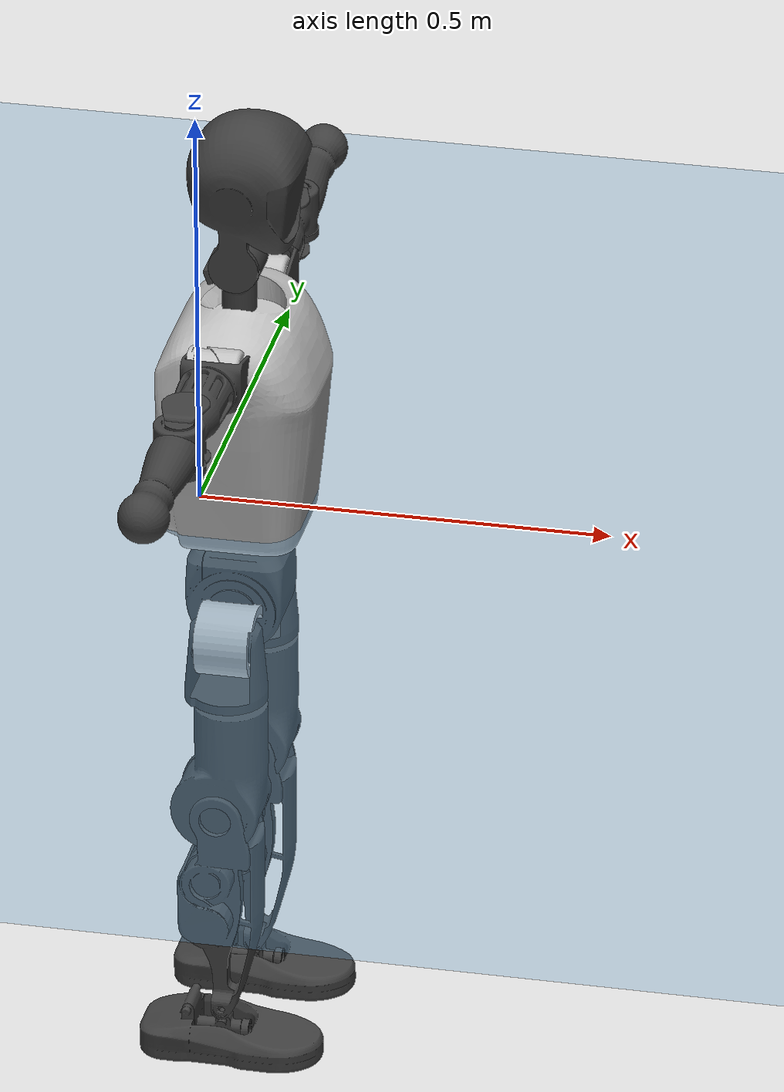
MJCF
<mujoco model="T1">
  <compiler angle="radian" assetdir="assets" balanceinertia="true" inertiafromgeom="false"/>

  <option timestep="0.005" density="1.2" viscosity="2e-05"/>

  <size nkey="1"/>

  <visual>
    <quality shadowsize="8192"/>
    <map shadowclip="0.5"/>
  </visual>

  <default>
    <default class="/">
      <joint armature="0.01" damping="0.01" frictionloss="0.1"/>
      <geom contype="0" conaffinity="0" group="1" solref="-1000 -80"/>
      <site size="0.01 0.005 0.005" group="5"/>
      <general forcelimited="true" biastype="affine" gainprm="25" biasprm="0 -25 -0.6"/>
      <default class="t1">
        <geom rgba="0.25 0.25 0.25 1"/>
        <default class="visual">
          <geom type="mesh" group="2"/>
        </default>
        <default class="collision">
          <geom group="3"/>
        </default>
        <default class="foot">
          <geom size="0.1115 0.05 0.015" type="box" condim="6" group="4" priority="1" solimp="0.015 1 0.015"/>
        </default>
        <default class="reward_collision_sphere">
          <geom group="5" rgba="1 0 0 1"/>
        </default>
      </default>
    </default>
  </default>

  <asset>
    <texture type="skybox" colorspace="auto" name="//unnamed_texture_0" builtin="gradient" rgb1="0.95 0.95 0.95" rgb2="0.95 0.95 0.95" width="100" height="600"/>
    <texture type="2d" colorspace="auto" name="texplane" builtin="checker" rgb1="0.345 0.575 0.748" rgb2="0.345 0.575 0.748" markrgb="1 1 1" width="512" height="512"/>
    <material name="MatPlane" class="/" texture="texplane" texuniform="true" texrepeat="2 2" specular="0.9"/>
    <mesh name="Trunk" class="/" file="Trunk.stl"/>
    <mesh name="H1" class="/" file="H1.stl"/>
    <mesh name="H2" class="/" file="H2.stl"/>
    <mesh name="AL1" class="/" file="AL1.stl"/>
    <mesh name="AL2" class="/" file="AL2.stl"/>
    <mesh name="AL3" class="/" file="AL3.stl"/>
    <mesh name="left_hand_link" class="/" file="left_hand_link.stl"/>
    <mesh name="AR1" class="/" file="AR1.stl"/>
    <mesh name="AR2" class="/" file="AR2.stl"/>
    <mesh name="AR3" class="/" file="AR3.stl"/>
    <mesh name="right_hand_link" class="/" file="right_hand_link.stl"/>
    <mesh name="Waist" class="/" file="Waist.stl"/>
    <mesh name="Hip_Pitch_Left" class="/" file="Hip_Pitch_Left.stl"/>
    <mesh name="Hip_Roll_Left" class="/" file="Hip_Roll_Left.stl"/>
    <mesh name="Hip_Yaw_Left" class="/" file="Hip_Yaw_Left.stl"/>
    <mesh name="Shank_Left" class="/" file="Shank_Left.stl"/>
    <mesh name="Ankle_Cross_Left" class="/" file="Ankle_Cross_Left.stl"/>
    <mesh name="left_foot_link" class="/" file="left_foot_link.stl"/>
    <mesh name="Hip_Pitch_Right" class="/" file="Hip_Pitch_Right.stl"/>
    <mesh name="Hip_Roll_Right" class="/" file="Hip_Roll_Right.stl"/>
    <mesh name="Hip_Yaw_Right" class="/" file="Hip_Yaw_Right.stl"/>
    <mesh name="Shank_Right" class="/" file="Shank_Right.stl"/>
    <mesh name="Ankle_Cross_Right" class="/" file="Ankle_Cross_Right.stl"/>
    <mesh name="right_foot_link" class="/" file="right_foot_link.stl"/>
  </asset>

  <worldbody>
    <geom name="floor" class="/" size="100 100 0.125" type="plane" group="0" material="MatPlane"/>
    <light name="toplight_shadow" class="/" pos="0 0 5" dir="0.0990148 0.0990148 -0.990148" type="directional" ambient="0.04 0.04 0.04" diffuse="0.55 0.55 0.55" specular="0.12 0.12 0.12"/>
    <light name="toplight_fill" class="/" pos="0 0 5" dir="0.0990148 0.0990148 -0.990148" type="directional" castshadow="false" ambient="0.04 0.04 0.04" diffuse="0.3 0.3 0.3" specular="0.08 0.08 0.08"/>
    <body name="trunk" childclass="t1" pos="-0.0001182 -0.00107429 0.00249459" quat="1 -0.000107402 0.000105827 -7.41082e-05">
      <inertial pos="0.0472008 -0.00324289 0.112303" quat="0.999915 0.00560804 -0.00970788 -0.00660859" mass="7.93518" diaginertia="0.0390069 0.0164104 0.0787093"/>
      <joint name="//unnamed_joint_0" type="free" armature="0" damping="0" frictionloss="0"/>
      <geom name="//unnamed_geom_1" class="visual" rgba="0.76 0.76 0.76 1" mesh="Trunk"/>
      <geom name="//unnamed_geom_2" class="collision" size="0.0662289 0.0883052 0.132458" pos="0.0504505 0 0.128567" type="box"/>
      <geom name="//unnamed_geom_3" class="reward_collision_sphere" size="0.101551" pos="0.0504505 0 0.107139"/>
      <geom name="//unnamed_geom_4" class="reward_collision_sphere" size="0.0132458" pos="0.0504505 0.0626384 0"/>
      <geom name="//unnamed_geom_5" class="reward_collision_sphere" size="0.0132458" pos="0.0504505 -0.0626384 0"/>
      <geom name="//unnamed_geom_6" class="reward_collision_sphere" size="0.0132458" pos="0.0504505 0.0788506 0.19285"/>
      <geom name="//unnamed_geom_7" class="reward_collision_sphere" size="0.0132458" pos="0.0504505 -0.0788506 0.19285"/>
      <site name="imu" pos="6.84159e-05 0.0137423 -0.00164115" size="0.00883052"/>
      <camera name="track" pos="0 -1.47384 0" quat="0.707107 0.707107 0 0" mode="trackcom"/>
      <camera name="ego_camera" pos="0.102583 0 0.449984" quat="-0.5 -0.5 0.5 0.5"/>
      <body name="H1" pos="0.0520694 -0.00216348 0.260336" quat="0.999999 0.00119851 -0.00050393 0.000335399">
        <inertial pos="-0.00192587 -1.89102e-05 0.0618568" quat="0.76494 -0.0128116 0.00206212 0.643971" mass="0.297739" diaginertia="0.000100721 4.95279e-05 0.000215069"/>
        <joint name="AAHead_yaw" pos="0 0 0" axis="0.000307364 -0.000257341 1" range="-1.56236 1.6226" armature="0.00873549" damping="0" frictionloss="0.0797898"/>
        <geom name="//unnamed_geom_8" class="visual" mesh="H1"/>
        <body name="H2" pos="-0.000326698 -4.57553e-05 0.0638143" quat="0.999999 -0.000575708 -0.000577472 -0.000911522">
          <inertial pos="0.00506801 0.00222779 0.108062" quat="0.987474 0.114397 -0.0715722 -0.0817679" mass="0.433977" diaginertia="0.000854581 0.000415617 0.0024016"/>
          <joint name="Head_pitch" pos="0 0 0" axis="0.0116126 -0.999931 -0.00189318" range="-1.24259 0.361976" armature="0.00905691" damping="0.0030316" frictionloss="0.090676"/>
          <geom name="//unnamed_geom_9" class="visual" mesh="H2"/>
          <geom name="//unnamed_geom_10" class="collision" size="0.0706441" pos="0.00840842 0 0.117853"/>
          <geom name="//unnamed_geom_11" class="reward_collision_sphere" size="0.0794747" pos="0.0168168 0 0.107139"/>
        </body>
      </body>
      <body name="AL1" pos="0.0494817 0.0803923 0.232982" quat="1 -5.32144e-06 0.000340775 -0.000134876">
        <inertial pos="-0.00111722 0.0313448 8.44224e-05" quat="0.512447 0.4854 -0.502433 0.499345" mass="0.353216" diaginertia="0.000551107 0.000271957 0.000399669"/>
        <joint name="Left_Shoulder_Pitch" pos="0 0 0" axis="-0.00932141 0.999954 0.0020414" range="-3.25294 1.21465" armature="0.00774902" damping="0.000743651" frictionloss="0.0849313"/>
        <geom name="//unnamed_geom_12" class="visual" rgba="0.76 0.76 0.76 1" mesh="AL1"/>
        <body name="AL2" pos="0.00125736 0.0364682 -9.61368e-05" quat="0.999999 0.00081552 -0.000942608 0.000481309">
          <inertial pos="0.0058715 0.0292724 -0.000299818" quat="0.482327 0.512513 -0.491563 0.512891" mass="0.105737" diaginertia="0.000161634 7.27874e-05 0.000237507"/>
          <joint name="Left_Shoulder_Roll" pos="0 0 0" axis="-1 0.000479635 0.000256387" range="-1.577 1.76" armature="0.00976074" damping="0.0192784" frictionloss="0.0918666"/>
          <geom name="//unnamed_geom_13" class="visual" mesh="AL2"/>
          <body name="AL3" pos="-0.000840852 0.0443062 0.00116977" quat="0.999999 -0.00128469 0.000391158 0.000272541">
            <inertial pos="0.0024649 0.0618203 0.000447711" quat="0.715028 0.699091 0.00209477 0.00134418" mass="0.723752" diaginertia="0.00562303 0.00295547 0.000904842"/>
            <joint name="Left_Elbow_Pitch" pos="0 0 0" axis="0.00205532 -0.999996 0.0020894" range="-2.27423 2.32118" armature="0.0100023" damping="0.00910727" frictionloss="0.0998559"/>
            <geom name="//unnamed_geom_14" class="visual" mesh="AL3"/>
            <geom name="//unnamed_geom_15" class="collision" size="0.0264916 0.0662289" pos="0 0.0368461 0" quat="0.707105 0.707108 0 0" type="cylinder"/>
            <geom name="//unnamed_geom_16" class="reward_collision_sphere" size="0.0317899"/>
            <body name="left_hand_link" pos="-0.000914591 0.108826 -0.000910632" quat="0.999999 0.000728491 0.00101456 0.000381853">
              <inertial pos="0.0014699 0.0831689 0.000564052" quat="0.706239 0.707963 0.00251133 0.00288215" mass="0.221249" diaginertia="0.00353263 0.00181679 0.000292017"/>
              <joint name="Left_Elbow_Yaw" pos="0 0 0" axis="0.0140413 -0.00601473 0.999883" range="-2.46286 0.0529834" armature="0.00774637" damping="0" frictionloss="0.0936874"/>
              <geom name="//unnamed_geom_17" class="visual" mesh="left_hand_link"/>
              <geom name="//unnamed_geom_18" class="collision" size="0.0264916 0.077267" pos="0 0.0957998 0" quat="0.707105 0.707108 0 0" type="cylinder"/>
              <geom name="//unnamed_geom_19" class="reward_collision_sphere" size="0.0441526"/>
              <geom name="//unnamed_geom_20" class="reward_collision_sphere" size="0.0309068" pos="0 0.0810614 0"/>
              <geom name="//unnamed_geom_21" class="reward_collision_sphere" size="0.0309068" pos="0 0.158438 0"/>
            </body>
          </body>
        </body>
      </body>
      <body name="AR1" pos="0.0487827 -0.0743569 0.231398" quat="1 -2.57389e-05 0.000413762 0.000153832">
        <inertial pos="-0.00124556 -0.0361245 0.000432829" quat="0.505712 0.497457 -0.502508 0.494244" mass="0.371656" diaginertia="0.000571054 0.000277264 0.000410916"/>
        <joint name="Right_Shoulder_Pitch" pos="0 0 0" axis="-0.00123657 -0.999905 -0.0137501" range="-1.22593 3.36466" armature="0.00929701" damping="0.0105941" frictionloss="0.0763251"/>
        <geom name="//unnamed_geom_22" class="visual" rgba="0.76 0.76 0.76 1" mesh="AR1"/>
        <body name="AR2" pos="0.00216619 -0.0360898 -0.000939699" quat="1 -1.66558e-05 -7.65299e-05 -1.38763e-05">
          <inertial pos="0.00575455 -0.0281844 -0.000750421" quat="0.512744 0.487727 -0.510912 0.488041" mass="0.117853" diaginertia="0.000174351 7.64606e-05 0.000257758"/>
          <joint name="Right_Shoulder_Roll" pos="0 0 0" axis="-0.999989 -0.00335041 -0.00337355" range="-1.73151 1.62004" armature="0.00929573" damping="0" frictionloss="0.0999769"/>
          <geom name="//unnamed_geom_23" class="visual" mesh="AR2"/>
          <body name="AR3" pos="-0.00302926 -0.0459821 -0.00241168" quat="1 -0.000374364 0.00010703 -0.000319929">
            <inertial pos="-0.000300362 -0.0604648 0.000288024" quat="0.705961 0.708248 0.00125155 0.00145741" mass="0.745594" diaginertia="0.00557178 0.00287335 0.000903196"/>
            <joint name="Right_Elbow_Pitch" pos="0 0 0" axis="0.00101014 0.999999 -0.000334462" range="-2.3225 2.21427" armature="0.00879484" damping="0.0146813" frictionloss="0.0895848"/>
            <geom name="//unnamed_geom_24" class="visual" mesh="AR3"/>
            <geom name="//unnamed_geom_25" class="collision" size="0.0264916 0.0662289" pos="0 -0.0368461 0" quat="0.707105 0.707108 0 0" type="cylinder"/>
            <geom name="//unnamed_geom_26" class="reward_collision_sphere" size="0.0317899"/>
            <body name="right_hand_link" pos="-0.00112362 -0.107658 0.00115924" quat="1 -1.20052e-05 -0.000133883 0.000167286">
              <inertial pos="0.000241483 -0.0803122 -0.00159383" quat="0.700038 0.714093 -0.00424821 0.000399483" mass="0.212648" diaginertia="0.00330848 0.00174579 0.000298069"/>
              <joint name="Right_Elbow_Yaw" pos="0 0 0" axis="0.0129569 -0.00723216 0.99989" stiffness="0.00187295" range="0.000736345 2.49237" armature="0.00914895" damping="0.00727333" frictionloss="0.0903089"/>
              <geom name="//unnamed_geom_27" class="visual" mesh="right_hand_link"/>
              <geom name="//unnamed_geom_28" class="collision" size="0.0264916 0.077267" pos="0 -0.0957998 0" quat="0.707105 0.707108 0 0" type="cylinder"/>
              <geom name="//unnamed_geom_29" class="reward_collision_sphere" size="0.0441526"/>
              <geom name="//unnamed_geom_30" class="reward_collision_sphere" size="0.0309068" pos="0 -0.0810614 0"/>
              <geom name="//unnamed_geom_31" class="reward_collision_sphere" size="0.0309068" pos="0 -0.158438 0"/>
            </body>
          </body>
        </body>
      </body>
      <body name="Waist" pos="0.0505062 -0.0026749 -0.124491" quat="0.999999 0.000132786 0.00139538 -0.000492869">
        <inertial pos="0.000603522 -0.00365026 0.00675245" quat="0.983554 9.2729e-05 -0.180595 0.00271625" mass="1.77694" diaginertia="0.00221014 0.00111717 0.00648984"/>
        <joint name="Waist" pos="0 0 0" axis="-0.0106954 -0.00293332 0.999938" stiffness="0.00426591" range="-1.58211 1.56194" armature="0.00859596" damping="0" frictionloss="0.0762936"/>
        <geom name="//unnamed_geom_32" class="visual" mesh="Waist"/>
        <body name="Hip_Pitch_Left" pos="0.0022763 0.0758767 0.0023826" quat="0.999999 0.00132923 -0.00050763 -0.000680368">
          <inertial pos="0.000906075 -0.00515148 -0.0192146" quat="0.975163 0.220965 0.0133598 0.00724264" mass="0.70059" diaginertia="0.000759408 0.000323615 0.00172847"/>
          <joint name="Left_Hip_Pitch" pos="0 0 0" axis="0.00230773 0.999994 -0.0027226" range="-1.7779 1.56335" armature="0.00911109" damping="0.00877296" frictionloss="0.0892219"/>
          <geom name="//unnamed_geom_33" class="visual" rgba="0.76 0.76 0.76 1" mesh="Hip_Pitch_Left"/>
          <body name="Hip_Roll_Left" pos="0.00267216 0.00158319 -0.0199648" quat="0.999999 0.000858468 0.000403823 0.000755395">
            <inertial pos="-0.00161602 -0.00297472 -0.0584064" quat="0.708349 0.000773021 0.00469805 0.705847" mass="0.261708" diaginertia="0.000698345 0.00032116 0.000720047"/>
            <joint name="Left_Hip_Roll" pos="0 0 0" axis="-0.999936 -0.00302446 0.0109434" range="-1.61626 0.256761" armature="0.00996967" damping="0.00571604" frictionloss="0.089687"/>
            <geom name="//unnamed_geom_34" class="visual" mesh="Hip_Roll_Left"/>
            <geom name="//unnamed_geom_35" class="reward_collision_sphere" size="0.0485678"/>
            <body name="Hip_Yaw_Left" pos="0.00217213 0.000655948 -0.0856787" quat="0.999999 -0.00124351 0.000232648 0.000875774">
              <inertial pos="-0.00684885 0.000332143 -0.0969946" quat="0.70008 -0.0341638 -0.0288075 0.712665" mass="1.50749" diaginertia="0.0106374 0.00557019 0.00381708"/>
              <joint name="Left_Hip_Yaw" pos="0 0 0" axis="0.00220167 0.000887052 -0.999997" range="-1.02454 0.952406" armature="0.00840491" damping="0.0145611" frictionloss="0.0924445"/>
              <geom name="//unnamed_geom_36" class="visual" mesh="Hip_Yaw_Left"/>
              <geom name="//unnamed_geom_37" class="collision" size="0.0441526 0.0706441" type="cylinder"/>
              <body name="Shank_Left" pos="-0.00959573 0.00137545 -0.146953" quat="1 -3.92217e-05 -1.09723e-05 -2.29334e-05">
                <inertial pos="-0.00231856 -0.00263734 -0.133485" quat="0.997804 0.0051106 -0.0215314 0.0624349" mass="1.16393" diaginertia="0.0144812 0.00722263 0.00255826"/>
                <joint name="Left_Knee_Pitch" pos="0 0 0" axis="-0.00643853 0.999978 0.00158047" stiffness="9.57811e-05" range="0.0270204 2.35366" armature="0.0091375" damping="0.00665869" frictionloss="0.0852437"/>
                <geom name="//unnamed_geom_38" class="visual" mesh="Shank_Left"/>
                <geom name="//unnamed_geom_39" class="collision" size="0.0441526 0.0662289" pos="0 0 -0.128567" type="cylinder"/>
                <geom name="//unnamed_geom_40" class="reward_collision_sphere" size="0.0573984"/>
                <body name="Ankle_Cross_Left" pos="0.000996849 -0.00012785 -0.297928" quat="1 0.000460874 -0.000665608 -0.000296482">
                  <inertial pos="-0.000621955 -0.000505409 -0.00987849" quat="0.441293 0.552105 0.550206 0.444651" mass="0.0521099" diaginertia="1.23485e-05 5.55291e-06 1.6026e-05"/>
                  <joint name="Left_Ankle_Pitch" pos="0 0 0" axis="0.000776526 0.999966 0.00817419" stiffness="0.00166603" range="-0.863863 0.344263" armature="0.00899719" damping="0.0149014" frictionloss="0.078048"/>
                  <geom name="//unnamed_geom_41" class="visual" mesh="Ankle_Cross_Left"/>
                  <body name="left_foot_link" pos="0.000278317 0.00340443 -0.0132564" quat="1 0.000462301 -0.000286845 0.000235418">
                    <inertial pos="-0.000320531 0.00265691 -0.0102937" quat="-0.00145217 0.627365 -0.00461871 0.778711" mass="0.451893" diaginertia="0.00115899 0.000523428 0.00309821"/>
                    <joint name="Left_Ankle_Roll" pos="0 0 0" axis="-0.999924 -0.00596851 0.0107681" range="-0.439109 0.495191" armature="0.00983058" damping="0.00932545" frictionloss="0.087812"/>
                    <geom name="//unnamed_geom_42" class="visual" mesh="left_foot_link"/>
                    <geom name="left_foot" class="foot" size="0.107443 0.0507903 0.013808" pos="0.00840842 0 -0.0160709"/>
                    <geom name="//unnamed_geom_44" class="reward_collision_sphere" size="0.0459187" pos="0.00840842 0 -0.0160709"/>
                    <geom name="//unnamed_geom_45" class="reward_collision_sphere" size="0.0264916" pos="0.07988 -0.0169492 -0.0160709"/>
                    <geom name="//unnamed_geom_46" class="reward_collision_sphere" size="0.0264916" pos="-0.058859 -0.0169492 -0.0160709"/>
                    <site name="left_foot" class="foot" pos="0.00840842 0 -0.0160709" size="0.00883052"/>
                  </body>
                </body>
              </body>
            </body>
          </body>
        </body>
        <body name="Hip_Pitch_Right" pos="0.00239681 -0.079329 -0.00230261" quat="1 0.000198868 7.03054e-05 0.000209124">
          <inertial pos="-0.00232402 0.00477483 -0.0193731" quat="0.97495 -0.221993 0.0122934 -0.00636105" mass="0.69146" diaginertia="0.000747149 0.000315663 0.00174091"/>
          <joint name="Right_Hip_Pitch" pos="0 0 0" axis="4.3023e-05 -1 -0.00019352" range="-1.59155 1.76379" armature="0.00984706" damping="0.0052842" frictionloss="0.0837716"/>
          <geom name="//unnamed_geom_47" class="visual" rgba="0.76 0.76 0.76 1" mesh="Hip_Pitch_Right"/>
          <body name="Hip_Roll_Right" pos="-0.000426023 -0.00185491 -0.0200544" quat="1 9.64393e-05 0.000473824 8.77813e-05">
            <inertial pos="0.00148119 -0.00318691 -0.0598974" quat="0.706634 0.00644254 -3.18215e-05 0.70755" mass="0.253757" diaginertia="0.000702807 0.000321701 0.00070406"/>
            <joint name="Right_Hip_Roll" pos="0 0 0" axis="-0.999996 0.00291759 0.000385401" range="-0.19222 1.57161" armature="0.00871542" damping="0.00442993" frictionloss="0.0771084"/>
            <geom name="//unnamed_geom_48" class="visual" mesh="Hip_Roll_Right"/>
            <geom name="//unnamed_geom_49" class="reward_collision_sphere" size="0.0485678"/>
            <body name="Hip_Yaw_Right" pos="0.0031843 -0.000772091 -0.0863384" quat="0.999999 0.000591891 -0.000455718 -0.00118728">
              <inertial pos="-0.00555263 -0.00287572 -0.0949322" quat="0.71445 -0.0315622 -0.033636 0.698165" mass="1.47791" diaginertia="0.0105191 0.00535565 0.00358425"/>
              <joint name="Right_Hip_Yaw" pos="0 0 0" axis="0.00345439 -0.0129973 -0.99991" range="-1.03629 1.05859" armature="0.00927462" damping="0.00938254" frictionloss="0.088332"/>
              <geom name="//unnamed_geom_50" class="visual" mesh="Hip_Yaw_Right"/>
              <geom name="//unnamed_geom_51" class="collision" size="0.0441526 0.0706441" type="cylinder"/>
              <body name="Shank_Right" pos="-0.0116052 -0.000180855 -0.142508" quat="1 -5.36381e-05 7.88934e-05 0.000214726">
                <inertial pos="-0.00524646 0.000710268 -0.132336" quat="0.999211 -0.000324238 -0.0199399 -0.0343492" mass="1.18348" diaginertia="0.0138845 0.00734402 0.00268084"/>
                <joint name="Right_Knee_Pitch" pos="0 0 0" axis="-0.000204577 -0.999999 -0.00130813" range="-2.31816 0.00407043" armature="0.0088189" damping="0.00545699" frictionloss="0.0906451"/>
                <geom name="//unnamed_geom_52" class="visual" mesh="Shank_Right"/>
                <geom name="//unnamed_geom_53" class="collision" size="0.0441526 0.0662289" pos="0 0 -0.128567" type="cylinder"/>
                <geom name="//unnamed_geom_54" class="reward_collision_sphere" size="0.0573984"/>
                <body name="Ankle_Cross_Right" pos="0.000665394 -0.000704134 -0.30018" quat="0.999999 0.000223284 0.000839408 0.000964078">
                  <inertial pos="-0.00217493 0.000947386 -0.0112829" quat="0.450221 0.542828 0.547553 0.450361" mass="0.0482" diaginertia="1.14027e-05 5.5563e-06 1.49422e-05"/>
                  <joint name="Right_Ankle_Pitch" pos="0 0 0" axis="-0.0133535 -0.99991 -0.00122684" range="-0.302862 0.869656" armature="0.00876811" damping="0" frictionloss="0.0767565"/>
                  <geom name="//unnamed_geom_55" class="visual" mesh="Ankle_Cross_Right"/>
                  <body name="right_foot_link" pos="0.000277585 -0.00147272 -0.0126832" quat="1 0.000103687 1.52496e-05 -3.11462e-05">
                    <inertial pos="-0.00245674 -0.00264717 -0.0101139" quat="0.00445849 0.619201 0.010386 0.785151" mass="0.474538" diaginertia="0.0011442 0.00052449 0.00303233"/>
                    <joint name="Right_Ankle_Roll" pos="0 0 0" axis="-0.999999 0.00144122 5.79515e-05" stiffness="0.00161047" range="-0.418204 0.434514" armature="0.00931535" damping="0.0207231" frictionloss="0.0905348"/>
                    <geom name="//unnamed_geom_56" class="visual" mesh="right_foot_link"/>
                    <geom name="right_foot" class="foot" size="0.0991101 0.045839 0.0129402" pos="0.00840842 0 -0.0160709"/>
                    <geom name="//unnamed_geom_58" class="reward_collision_sphere" size="0.0353221"/>
                    <geom name="//unnamed_geom_59" class="reward_collision_sphere" size="0.0264916" pos="0.00840842 0 -0.0160709"/>
                    <geom name="//unnamed_geom_60" class="reward_collision_sphere" size="0.0264916" pos="0.07988 0.0169492 -0.0160709"/>
                    <geom name="//unnamed_geom_61" class="reward_collision_sphere" size="0.0264916" pos="-0.058859 0.0169492 -0.0160709"/>
                    <site name="right_foot" class="foot" pos="0.00840842 0 -0.0160709" size="0.00883052"/>
                  </body>
                </body>
              </body>
            </body>
          </body>
        </body>
      </body>
    </body>
  </worldbody>

  <contact>
    <pair class="/" geom1="floor" geom2="left_foot" name="//unnamed_contact_0"/>
    <pair class="/" geom1="floor" geom2="right_foot" name="//unnamed_contact_1"/>
  </contact>

  <actuator>
    <general name="AAHead_yaw" class="/" joint="AAHead_yaw" forcerange="-6.69955 6.69955" gainprm="21.6558" biasprm="0 -21.6558 -0.491977"/>
    <general name="Head_pitch" class="/" joint="Head_pitch" forcerange="-6.72954 6.72954" gainprm="21.6558" biasprm="0 -21.6558 -0.491977"/>
    <general name="Left_Shoulder_Pitch" class="/" joint="Left_Shoulder_Pitch" forcerange="-15.6185 15.6185" gainprm="21.6558" biasprm="0 -21.6558 -0.491977"/>
    <general name="Left_Shoulder_Roll" class="/" joint="Left_Shoulder_Roll" forcerange="-15.4513 15.4513" gainprm="21.6558" biasprm="0 -21.6558 -0.491977"/>
    <general name="Left_Elbow_Pitch" class="/" joint="Left_Elbow_Pitch" forcerange="-17.5671 17.5671" gainprm="21.6558" biasprm="0 -21.6558 -0.491977"/>
    <general name="Left_Elbow_Yaw" class="/" joint="Left_Elbow_Yaw" forcerange="-14.7569 14.7569" gainprm="21.6558" biasprm="0 -21.6558 -0.491977"/>
    <general name="Right_Shoulder_Pitch" class="/" joint="Right_Shoulder_Pitch" forcerange="-14.3816 14.3816" gainprm="21.6558" biasprm="0 -21.6558 -0.491977"/>
    <general name="Right_Shoulder_Roll" class="/" joint="Right_Shoulder_Roll" forcerange="-15.5205 15.5205" gainprm="21.6558" biasprm="0 -21.6558 -0.491977"/>
    <general name="Right_Elbow_Pitch" class="/" joint="Right_Elbow_Pitch" forcerange="-17.5517 17.5517" gainprm="21.6558" biasprm="0 -21.6558 -0.491977"/>
    <general name="Right_Elbow_Yaw" class="/" joint="Right_Elbow_Yaw" forcerange="-16.0762 16.0762" gainprm="21.6558" biasprm="0 -21.6558 -0.491977"/>
    <general name="Waist" class="/" joint="Waist" forcerange="-27.5978 27.5978" gainprm="21.6558" biasprm="0 -21.6558 -0.491977"/>
    <general name="Left_Hip_Pitch" class="/" joint="Left_Hip_Pitch" forcerange="-39.9204 39.9204" gainprm="21.6558" biasprm="0 -21.6558 -0.491977"/>
    <general name="Left_Hip_Roll" class="/" joint="Left_Hip_Roll" forcerange="-29.2486 29.2486" gainprm="21.6558" biasprm="0 -21.6558 -0.491977"/>
    <general name="Left_Hip_Yaw" class="/" joint="Left_Hip_Yaw" forcerange="-24.004 24.004" gainprm="21.6558" biasprm="0 -21.6558 -0.491977"/>
    <general name="Left_Knee_Pitch" class="/" joint="Left_Knee_Pitch" forcerange="-57.6175 57.6175" gainprm="21.6558" biasprm="0 -21.6558 -0.491977"/>
    <general name="Left_Ankle_Pitch" class="/" joint="Left_Ankle_Pitch" forcerange="-16.1619 16.1619" gainprm="21.6558" biasprm="0 -21.6558 -0.491977"/>
    <general name="Left_Ankle_Roll" class="/" joint="Left_Ankle_Roll" forcerange="-13.2791 13.2791" gainprm="21.6558" biasprm="0 -21.6558 -0.491977"/>
    <general name="Right_Hip_Pitch" class="/" joint="Right_Hip_Pitch" forcerange="-39.9257 39.9257" gainprm="21.6558" biasprm="0 -21.6558 -0.491977"/>
    <general name="Right_Hip_Roll" class="/" joint="Right_Hip_Roll" forcerange="-24.9787 24.9787" gainprm="21.6558" biasprm="0 -21.6558 -0.491977"/>
    <general name="Right_Hip_Yaw" class="/" joint="Right_Hip_Yaw" forcerange="-25.1093 25.1093" gainprm="21.6558" biasprm="0 -21.6558 -0.491977"/>
    <general name="Right_Knee_Pitch" class="/" joint="Right_Knee_Pitch" forcerange="-58.3145 58.3145" gainprm="21.6558" biasprm="0 -21.6558 -0.491977"/>
    <general name="Right_Ankle_Pitch" class="/" joint="Right_Ankle_Pitch" forcerange="-18.8378 18.8378" gainprm="21.6558" biasprm="0 -21.6558 -0.491977"/>
    <general name="Right_Ankle_Roll" class="/" joint="Right_Ankle_Roll" forcerange="-11.8963 11.8963" gainprm="21.6558" biasprm="0 -21.6558 -0.491977"/>
  </actuator>

  <sensor>
    <gyro site="imu" name="imu_angular_velocity"/>
    <velocimeter site="imu" name="imu_linear_velocity"/>
    <framelinvel objtype="site" objname="left_foot" name="left_foot_global_linear_velocity"/>
    <framelinvel objtype="site" objname="right_foot" name="right_foot_global_linear_velocity"/>
  </sensor>

  <keyframe>
    <key name="home" qpos="0 0 0.6385 1 0 0 0 0 0 0 1.4 0 -0.4 0 -1.4 0 0.4 0 -0.4 0 0 0.8 -0.4 0 0.4 0 0 -0.8 0.4 0"/>
  </keyframe>
</mujoco>
